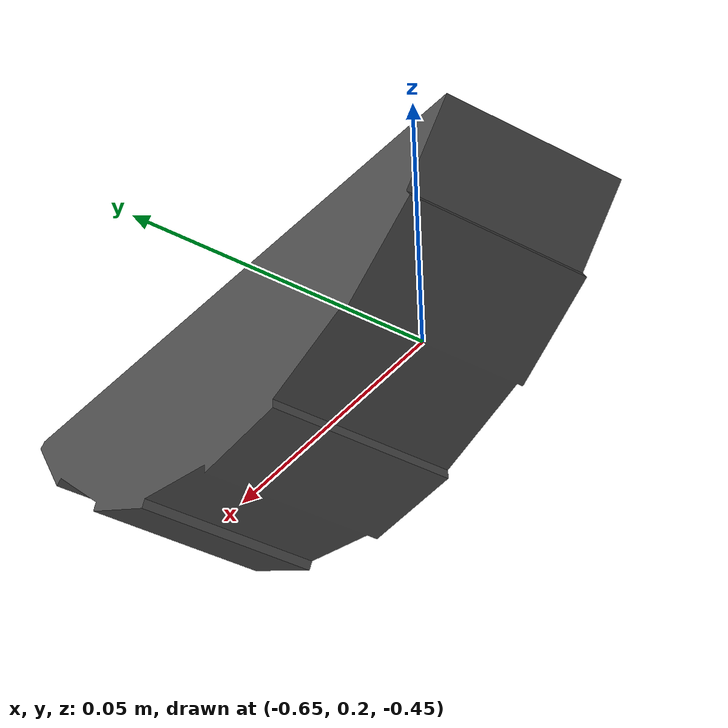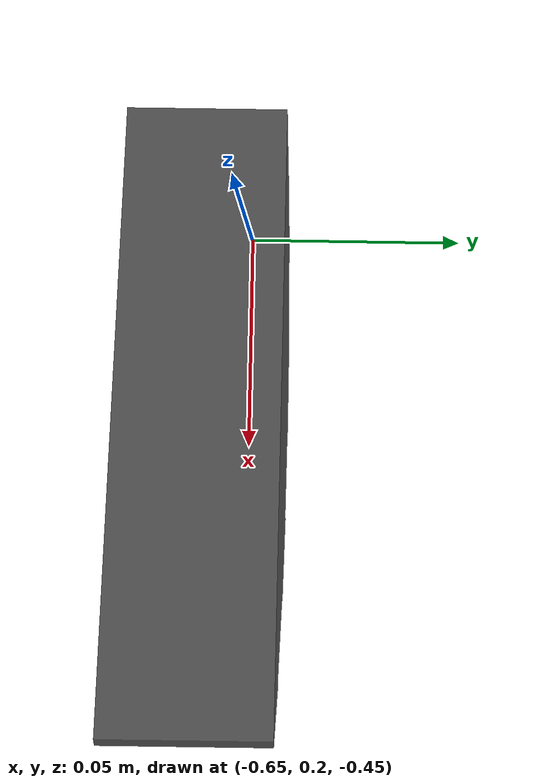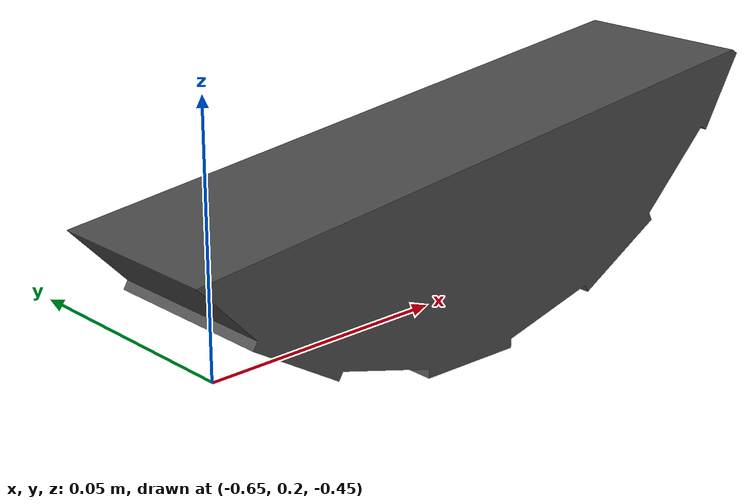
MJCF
<mujoco model="original-120">
  <default>
    <default class="visual">
      <geom group="2" type="mesh" contype="0" conaffinity="0"/>
    </default>
    <default class="collision">
      <geom group="3" type="mesh"/>
    </default>
  </default>
  <asset>
    <material name="material_0_0" specular="0.06666666666666667" shininess="0.03" rgba="0.3176470588235294 0.3176470588235294 0.3176470588235294 1"/>
    <mesh file="original-120.obj"/>
  </asset>
  <worldbody>
    <body name="original-120">
      <geom material="material_0_0" mesh="original-120" class="visual"/>
      <geom mesh="original-120" class="collision"/>
    </body>
  </worldbody>
</mujoco>
